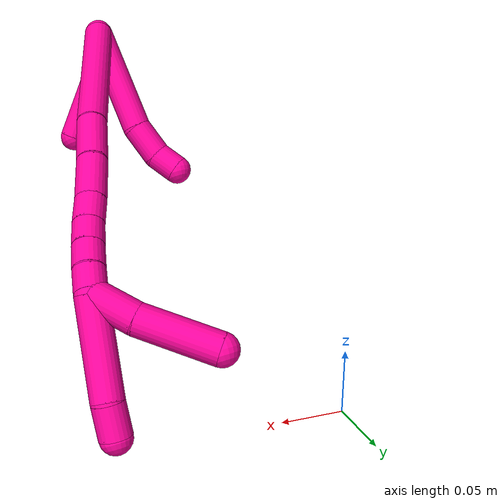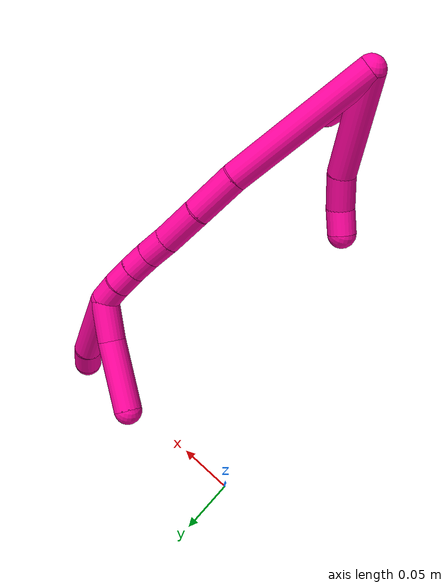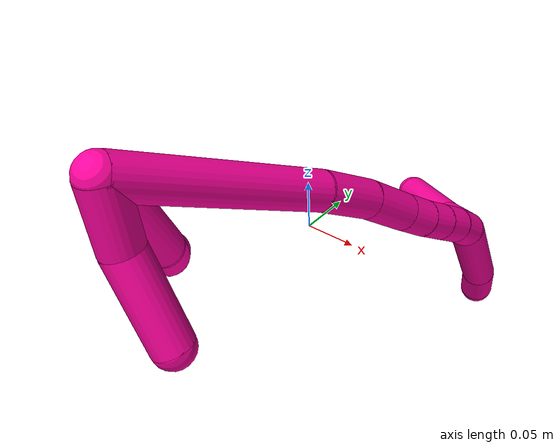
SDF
<sdf version="1.7">
 <world name="default">
  <model name="18">
   <static>0</static>
   <link name="18">
    <collision name="collision-cylinder-e_1_2_8">
     <pose>-0.005236 -0.000471 -0.047545 3.13168 -0.109675 -2.96148</pose>
     <geometry><cylinder><radius>0.0125</radius><length>0.09567</length></cylinder></geometry>
     <surface>
      <friction><ode><mu>1.16</mu><mu2>1.16</mu2><slip1>0</slip1><slip2>0</slip2></ode></friction>
      <contact><ode><kp>1e+06</kp><kd>1</kd><max_vel>0</max_vel><min_depth>0.001</min_depth></ode></contact>
     </surface>
    </collision>
    <visual name="visual-cylinder-e_1_2_8">
     <pose>-0.005236 -0.000471 -0.047545 3.13168 -0.109675 -2.96148</pose>
     <geometry><cylinder><radius>0.0125</radius><length>0.09567</length></cylinder></geometry>
     <material><ambient>1 0.007843 0.615686 1</ambient></material>
    </visual>
    <collision name="collision-cylinder-e_2_8_9">
     <pose>-0.016067 -0.000616 -0.109893 -3.11954 -0.361298 3.02098</pose>
     <geometry><cylinder><radius>0.0125</radius><length>0.031656</length></cylinder></geometry>
     <surface>
      <friction><ode><mu>1.16</mu><mu2>1.16</mu2><slip1>0</slip1><slip2>0</slip2></ode></friction>
      <contact><ode><kp>1e+06</kp><kd>1</kd><max_vel>0</max_vel><min_depth>0.001</min_depth></ode></contact>
     </surface>
    </collision>
    <visual name="visual-cylinder-e_2_8_9">
     <pose>-0.016067 -0.000616 -0.109893 -3.11954 -0.361298 3.02098</pose>
     <geometry><cylinder><radius>0.0125</radius><length>0.031656</length></cylinder></geometry>
     <material><ambient>1 0.007843 0.615686 1</ambient></material>
    </visual>
    <collision name="collision-cylinder-e_3_9_6">
     <pose>-0.027845 0.002496 -0.13378 -2.84407 -0.57692 2.20621</pose>
     <geometry><cylinder><radius>0.0125</radius><length>0.022675</length></cylinder></geometry>
     <surface>
      <friction><ode><mu>1.16</mu><mu2>1.16</mu2><slip1>0</slip1><slip2>0</slip2></ode></friction>
      <contact><ode><kp>1e+06</kp><kd>1</kd><max_vel>0</max_vel><min_depth>0.001</min_depth></ode></contact>
     </surface>
    </collision>
    <visual name="visual-cylinder-e_3_9_6">
     <pose>-0.027845 0.002496 -0.13378 -2.84407 -0.57692 2.20621</pose>
     <geometry><cylinder><radius>0.0125</radius><length>0.022675</length></cylinder></geometry>
     <material><ambient>1 0.007843 0.615686 1</ambient></material>
    </visual>
    <collision name="collision-cylinder-e_1_2_10">
     <pose>0.004608 -0.009755 -0.01762 2.63599 0.224941 0.824357</pose>
     <geometry><cylinder><radius>0.0125</radius><length>0.041321</length></cylinder></geometry>
     <surface>
      <friction><ode><mu>1.16</mu><mu2>1.16</mu2><slip1>0</slip1><slip2>0</slip2></ode></friction>
      <contact><ode><kp>1e+06</kp><kd>1</kd><max_vel>0</max_vel><min_depth>0.001</min_depth></ode></contact>
     </surface>
    </collision>
    <visual name="visual-cylinder-e_1_2_10">
     <pose>0.004608 -0.009755 -0.01762 2.63599 0.224941 0.824357</pose>
     <geometry><cylinder><radius>0.0125</radius><length>0.041321</length></cylinder></geometry>
     <material><ambient>1 0.007843 0.615686 1</ambient></material>
    </visual>
    <collision name="collision-cylinder-e_2_10_5">
     <pose>0.023764 -0.031767 -0.057577 2.63969 0.518785 1.60535</pose>
     <geometry><cylinder><radius>0.0125</radius><length>0.058679</length></cylinder></geometry>
     <surface>
      <friction><ode><mu>1.16</mu><mu2>1.16</mu2><slip1>0</slip1><slip2>0</slip2></ode></friction>
      <contact><ode><kp>1e+06</kp><kd>1</kd><max_vel>0</max_vel><min_depth>0.001</min_depth></ode></contact>
     </surface>
    </collision>
    <visual name="visual-cylinder-e_2_10_5">
     <pose>0.023764 -0.031767 -0.057577 2.63969 0.518785 1.60535</pose>
     <geometry><cylinder><radius>0.0125</radius><length>0.058679</length></cylinder></geometry>
     <material><ambient>1 0.007843 0.615686 1</ambient></material>
    </visual>
    <collision name="collision-cylinder-e_1_2_11">
     <pose>0.023878 0.036221 -0.051908 -2.53235 0.360731 -1.05113</pose>
     <geometry><cylinder><radius>0.0125</radius><length>0.135301</length></cylinder></geometry>
     <surface>
      <friction><ode><mu>1.16</mu><mu2>1.16</mu2><slip1>0</slip1><slip2>0</slip2></ode></friction>
      <contact><ode><kp>1e+06</kp><kd>1</kd><max_vel>0</max_vel><min_depth>0.001</min_depth></ode></contact>
     </surface>
    </collision>
    <visual name="visual-cylinder-e_1_2_11">
     <pose>0.023878 0.036221 -0.051908 -2.53235 0.360731 -1.05113</pose>
     <geometry><cylinder><radius>0.0125</radius><length>0.135301</length></cylinder></geometry>
     <material><ambient>1 0.007843 0.615686 1</ambient></material>
    </visual>
    <collision name="collision-cylinder-e_2_11_12">
     <pose>0.054291 0.082347 -0.121748 -2.63696 0.308817 -1.08632</pose>
     <geometry><cylinder><radius>0.0125</radius><length>0.043006</length></cylinder></geometry>
     <surface>
      <friction><ode><mu>1.16</mu><mu2>1.16</mu2><slip1>0</slip1><slip2>0</slip2></ode></friction>
      <contact><ode><kp>1e+06</kp><kd>1</kd><max_vel>0</max_vel><min_depth>0.001</min_depth></ode></contact>
     </surface>
    </collision>
    <visual name="visual-cylinder-e_2_11_12">
     <pose>0.054291 0.082347 -0.121748 -2.63696 0.308817 -1.08632</pose>
     <geometry><cylinder><radius>0.0125</radius><length>0.043006</length></cylinder></geometry>
     <material><ambient>1 0.007843 0.615686 1</ambient></material>
    </visual>
    <collision name="collision-cylinder-e_3_12_13">
     <pose>0.06716 0.099185 -0.156103 -2.74205 0.341392 -1.41056</pose>
     <geometry><cylinder><radius>0.0125</radius><length>0.037835</length></cylinder></geometry>
     <surface>
      <friction><ode><mu>1.16</mu><mu2>1.16</mu2><slip1>0</slip1><slip2>0</slip2></ode></friction>
      <contact><ode><kp>1e+06</kp><kd>1</kd><max_vel>0</max_vel><min_depth>0.001</min_depth></ode></contact>
     </surface>
    </collision>
    <visual name="visual-cylinder-e_3_12_13">
     <pose>0.06716 0.099185 -0.156103 -2.74205 0.341392 -1.41056</pose>
     <geometry><cylinder><radius>0.0125</radius><length>0.037835</length></cylinder></geometry>
     <material><ambient>1 0.007843 0.615686 1</ambient></material>
    </visual>
    <collision name="collision-cylinder-e_4_13_14">
     <pose>0.077745 0.11048 -0.182056 -2.71255 0.3853 -1.46045</pose>
     <geometry><cylinder><radius>0.0125</radius><length>0.022621</length></cylinder></geometry>
     <surface>
      <friction><ode><mu>1.16</mu><mu2>1.16</mu2><slip1>0</slip1><slip2>0</slip2></ode></friction>
      <contact><ode><kp>1e+06</kp><kd>1</kd><max_vel>0</max_vel><min_depth>0.001</min_depth></ode></contact>
     </surface>
    </collision>
    <visual name="visual-cylinder-e_4_13_14">
     <pose>0.077745 0.11048 -0.182056 -2.71255 0.3853 -1.46045</pose>
     <geometry><cylinder><radius>0.0125</radius><length>0.022621</length></cylinder></geometry>
     <material><ambient>1 0.007843 0.615686 1</ambient></material>
    </visual>
    <collision name="collision-cylinder-e_5_14_15">
     <pose>0.085256 0.119325 -0.200199 -2.66143 0.323939 -1.17714</pose>
     <geometry><cylinder><radius>0.0125</radius><length>0.020486</length></cylinder></geometry>
     <surface>
      <friction><ode><mu>1.16</mu><mu2>1.16</mu2><slip1>0</slip1><slip2>0</slip2></ode></friction>
      <contact><ode><kp>1e+06</kp><kd>1</kd><max_vel>0</max_vel><min_depth>0.001</min_depth></ode></contact>
     </surface>
    </collision>
    <visual name="visual-cylinder-e_5_14_15">
     <pose>0.085256 0.119325 -0.200199 -2.66143 0.323939 -1.17714</pose>
     <geometry><cylinder><radius>0.0125</radius><length>0.020486</length></cylinder></geometry>
     <material><ambient>1 0.007843 0.615686 1</ambient></material>
    </visual>
    <collision name="collision-cylinder-e_6_15_16">
     <pose>0.091388 0.128307 -0.217598 -2.66862 0.283184 -1.06827</pose>
     <geometry><cylinder><radius>0.0125</radius><length>0.020558</length></cylinder></geometry>
     <surface>
      <friction><ode><mu>1.16</mu><mu2>1.16</mu2><slip1>0</slip1><slip2>0</slip2></ode></friction>
      <contact><ode><kp>1e+06</kp><kd>1</kd><max_vel>0</max_vel><min_depth>0.001</min_depth></ode></contact>
     </surface>
    </collision>
    <visual name="visual-cylinder-e_6_15_16">
     <pose>0.091388 0.128307 -0.217598 -2.66862 0.283184 -1.06827</pose>
     <geometry><cylinder><radius>0.0125</radius><length>0.020558</length></cylinder></geometry>
     <material><ambient>1 0.007843 0.615686 1</ambient></material>
    </visual>
    <collision name="collision-cylinder-e_7_16_1">
     <pose>0.096657 0.136408 -0.235505 -2.76514 0.239654 -1.12739</pose>
     <geometry><cylinder><radius>0.0125</radius><length>0.020194</length></cylinder></geometry>
     <surface>
      <friction><ode><mu>1.16</mu><mu2>1.16</mu2><slip1>0</slip1><slip2>0</slip2></ode></friction>
      <contact><ode><kp>1e+06</kp><kd>1</kd><max_vel>0</max_vel><min_depth>0.001</min_depth></ode></contact>
     </surface>
    </collision>
    <visual name="visual-cylinder-e_7_16_1">
     <pose>0.096657 0.136408 -0.235505 -2.76514 0.239654 -1.12739</pose>
     <geometry><cylinder><radius>0.0125</radius><length>0.020194</length></cylinder></geometry>
     <material><ambient>1 0.007843 0.615686 1</ambient></material>
    </visual>
    <collision name="collision-cylinder-e_1_1_17">
     <pose>0.103157 0.139112 -0.281955 3.11744 0.109459 2.70771</pose>
     <geometry><cylinder><radius>0.0125</radius><length>0.075129</length></cylinder></geometry>
     <surface>
      <friction><ode><mu>1.16</mu><mu2>1.16</mu2><slip1>0</slip1><slip2>0</slip2></ode></friction>
      <contact><ode><kp>1e+06</kp><kd>1</kd><max_vel>0</max_vel><min_depth>0.001</min_depth></ode></contact>
     </surface>
    </collision>
    <visual name="visual-cylinder-e_1_1_17">
     <pose>0.103157 0.139112 -0.281955 3.11744 0.109459 2.70771</pose>
     <geometry><cylinder><radius>0.0125</radius><length>0.075129</length></cylinder></geometry>
     <material><ambient>1 0.007843 0.615686 1</ambient></material>
    </visual>
    <collision name="collision-cylinder-e_2_17_4">
     <pose>0.107268 0.13568 -0.331459 2.93666 0.000599 0.005824</pose>
     <geometry><cylinder><radius>0.0125</radius><length>0.024871</length></cylinder></geometry>
     <surface>
      <friction><ode><mu>1.16</mu><mu2>1.16</mu2><slip1>0</slip1><slip2>0</slip2></ode></friction>
      <contact><ode><kp>1e+06</kp><kd>1</kd><max_vel>0</max_vel><min_depth>0.001</min_depth></ode></contact>
     </surface>
    </collision>
    <visual name="visual-cylinder-e_2_17_4">
     <pose>0.107268 0.13568 -0.331459 2.93666 0.000599 0.005824</pose>
     <geometry><cylinder><radius>0.0125</radius><length>0.024871</length></cylinder></geometry>
     <material><ambient>1 0.007843 0.615686 1</ambient></material>
    </visual>
    <collision name="collision-cylinder-e_1_1_18">
     <pose>0.087132 0.145576 -0.257415 -2.73133 -0.70731 2.11518</pose>
     <geometry><cylinder><radius>0.0125</radius><length>0.036694</length></cylinder></geometry>
     <surface>
      <friction><ode><mu>1.16</mu><mu2>1.16</mu2><slip1>0</slip1><slip2>0</slip2></ode></friction>
      <contact><ode><kp>1e+06</kp><kd>1</kd><max_vel>0</max_vel><min_depth>0.001</min_depth></ode></contact>
     </surface>
    </collision>
    <visual name="visual-cylinder-e_1_1_18">
     <pose>0.087132 0.145576 -0.257415 -2.73133 -0.70731 2.11518</pose>
     <geometry><cylinder><radius>0.0125</radius><length>0.036694</length></cylinder></geometry>
     <material><ambient>1 0.007843 0.615686 1</ambient></material>
    </visual>
    <collision name="collision-cylinder-e_2_18_3">
     <pose>0.05177 0.161871 -0.288569 -2.61271 -0.83386 2.04409</pose>
     <geometry><cylinder><radius>0.0125</radius><length>0.063306</length></cylinder></geometry>
     <surface>
      <friction><ode><mu>1.16</mu><mu2>1.16</mu2><slip1>0</slip1><slip2>0</slip2></ode></friction>
      <contact><ode><kp>1e+06</kp><kd>1</kd><max_vel>0</max_vel><min_depth>0.001</min_depth></ode></contact>
     </surface>
    </collision>
    <visual name="visual-cylinder-e_2_18_3">
     <pose>0.05177 0.161871 -0.288569 -2.61271 -0.83386 2.04409</pose>
     <geometry><cylinder><radius>0.0125</radius><length>0.063306</length></cylinder></geometry>
     <material><ambient>1 0.007843 0.615686 1</ambient></material>
    </visual>
    <collision name="collision-sphere-3">
     <pose>0.02833 0.172604 -0.306934 0 -0 0</pose>
     <geometry><sphere><radius>0.0125</radius></sphere></geometry>
     <surface>
      <friction><ode><mu>1.16</mu><mu2>1.16</mu2><slip1>0</slip1><slip2>0</slip2></ode></friction>
      <contact><ode><kp>1e+06</kp><kd>1</kd><max_vel>0</max_vel><min_depth>0.001</min_depth></ode></contact>
     </surface>
    </collision>
    <visual name="visual-sphere-3">
     <pose>0.02833 0.172604 -0.306934 0 -0 0</pose>
     <geometry><sphere><radius>0.0125</radius></sphere></geometry>
     <material><ambient>1 0.007843 0.615686 1</ambient></material>
    </visual>
    <collision name="collision-sphere-5">
     <pose>0.038311 -0.044025 -0.079914 0 -0 0</pose>
     <geometry><sphere><radius>0.0125</radius></sphere></geometry>
     <surface>
      <friction><ode><mu>1.16</mu><mu2>1.16</mu2><slip1>0</slip1><slip2>0</slip2></ode></friction>
      <contact><ode><kp>1e+06</kp><kd>1</kd><max_vel>0</max_vel><min_depth>0.001</min_depth></ode></contact>
     </surface>
    </collision>
    <visual name="visual-sphere-5">
     <pose>0.038311 -0.044025 -0.079914 0 -0 0</pose>
     <geometry><sphere><radius>0.0125</radius></sphere></geometry>
     <material><ambient>1 0.007843 0.615686 1</ambient></material>
    </visual>
    <collision name="collision-sphere-10">
     <pose>0.009217 -0.019509 -0.03524 0 -0 0</pose>
     <geometry><sphere><radius>0.0125</radius></sphere></geometry>
     <surface>
      <friction><ode><mu>1.16</mu><mu2>1.16</mu2><slip1>0</slip1><slip2>0</slip2></ode></friction>
      <contact><ode><kp>1e+06</kp><kd>1</kd><max_vel>0</max_vel><min_depth>0.001</min_depth></ode></contact>
     </surface>
    </collision>
    <visual name="visual-sphere-10">
     <pose>0.009217 -0.019509 -0.03524 0 -0 0</pose>
     <geometry><sphere><radius>0.0125</radius></sphere></geometry>
     <material><ambient>1 0.007843 0.615686 1</ambient></material>
    </visual>
    <collision name="collision-sphere-6">
     <pose>-0.034029 0.005282 -0.142865 0 -0 0</pose>
     <geometry><sphere><radius>0.0125</radius></sphere></geometry>
     <surface>
      <friction><ode><mu>1.16</mu><mu2>1.16</mu2><slip1>0</slip1><slip2>0</slip2></ode></friction>
      <contact><ode><kp>1e+06</kp><kd>1</kd><max_vel>0</max_vel><min_depth>0.001</min_depth></ode></contact>
     </surface>
    </collision>
    <visual name="visual-sphere-6">
     <pose>-0.034029 0.005282 -0.142865 0 -0 0</pose>
     <geometry><sphere><radius>0.0125</radius></sphere></geometry>
     <material><ambient>1 0.007843 0.615686 1</ambient></material>
    </visual>
    <collision name="collision-sphere-9">
     <pose>-0.021662 -0.00029 -0.124695 0 -0 0</pose>
     <geometry><sphere><radius>0.0125</radius></sphere></geometry>
     <surface>
      <friction><ode><mu>1.16</mu><mu2>1.16</mu2><slip1>0</slip1><slip2>0</slip2></ode></friction>
      <contact><ode><kp>1e+06</kp><kd>1</kd><max_vel>0</max_vel><min_depth>0.001</min_depth></ode></contact>
     </surface>
    </collision>
    <visual name="visual-sphere-9">
     <pose>-0.021662 -0.00029 -0.124695 0 -0 0</pose>
     <geometry><sphere><radius>0.0125</radius></sphere></geometry>
     <material><ambient>1 0.007843 0.615686 1</ambient></material>
    </visual>
    <collision name="collision-sphere-2">
     <geometry><sphere><radius>0.0125</radius></sphere></geometry>
     <surface>
      <friction><ode><mu>1.16</mu><mu2>1.16</mu2><slip1>0</slip1><slip2>0</slip2></ode></friction>
      <contact><ode><kp>1e+06</kp><kd>1</kd><max_vel>0</max_vel><min_depth>0.001</min_depth></ode></contact>
     </surface>
    </collision>
    <visual name="visual-sphere-2">
     <geometry><sphere><radius>0.0125</radius></sphere></geometry>
     <material><ambient>1 0.007843 0.615686 1</ambient></material>
    </visual>
    <collision name="collision-sphere-8">
     <pose>-0.010472 -0.000943 -0.09509 0 -0 0</pose>
     <geometry><sphere><radius>0.0125</radius></sphere></geometry>
     <surface>
      <friction><ode><mu>1.16</mu><mu2>1.16</mu2><slip1>0</slip1><slip2>0</slip2></ode></friction>
      <contact><ode><kp>1e+06</kp><kd>1</kd><max_vel>0</max_vel><min_depth>0.001</min_depth></ode></contact>
     </surface>
    </collision>
    <visual name="visual-sphere-8">
     <pose>-0.010472 -0.000943 -0.09509 0 -0 0</pose>
     <geometry><sphere><radius>0.0125</radius></sphere></geometry>
     <material><ambient>1 0.007843 0.615686 1</ambient></material>
    </visual>
    <collision name="collision-sphere-11">
     <pose>0.047756 0.072442 -0.103816 0 -0 0</pose>
     <geometry><sphere><radius>0.0125</radius></sphere></geometry>
     <surface>
      <friction><ode><mu>1.16</mu><mu2>1.16</mu2><slip1>0</slip1><slip2>0</slip2></ode></friction>
      <contact><ode><kp>1e+06</kp><kd>1</kd><max_vel>0</max_vel><min_depth>0.001</min_depth></ode></contact>
     </surface>
    </collision>
    <visual name="visual-sphere-11">
     <pose>0.047756 0.072442 -0.103816 0 -0 0</pose>
     <geometry><sphere><radius>0.0125</radius></sphere></geometry>
     <material><ambient>1 0.007843 0.615686 1</ambient></material>
    </visual>
    <collision name="collision-sphere-12">
     <pose>0.060826 0.092251 -0.139681 0 -0 0</pose>
     <geometry><sphere><radius>0.0125</radius></sphere></geometry>
     <surface>
      <friction><ode><mu>1.16</mu><mu2>1.16</mu2><slip1>0</slip1><slip2>0</slip2></ode></friction>
      <contact><ode><kp>1e+06</kp><kd>1</kd><max_vel>0</max_vel><min_depth>0.001</min_depth></ode></contact>
     </surface>
    </collision>
    <visual name="visual-sphere-12">
     <pose>0.060826 0.092251 -0.139681 0 -0 0</pose>
     <geometry><sphere><radius>0.0125</radius></sphere></geometry>
     <material><ambient>1 0.007843 0.615686 1</ambient></material>
    </visual>
    <collision name="collision-sphere-13">
     <pose>0.073494 0.10612 -0.172525 0 -0 0</pose>
     <geometry><sphere><radius>0.0125</radius></sphere></geometry>
     <surface>
      <friction><ode><mu>1.16</mu><mu2>1.16</mu2><slip1>0</slip1><slip2>0</slip2></ode></friction>
      <contact><ode><kp>1e+06</kp><kd>1</kd><max_vel>0</max_vel><min_depth>0.001</min_depth></ode></contact>
     </surface>
    </collision>
    <visual name="visual-sphere-13">
     <pose>0.073494 0.10612 -0.172525 0 -0 0</pose>
     <geometry><sphere><radius>0.0125</radius></sphere></geometry>
     <material><ambient>1 0.007843 0.615686 1</ambient></material>
    </visual>
    <collision name="collision-sphere-14">
     <pose>0.081995 0.11484 -0.191587 0 -0 0</pose>
     <geometry><sphere><radius>0.0125</radius></sphere></geometry>
     <surface>
      <friction><ode><mu>1.16</mu><mu2>1.16</mu2><slip1>0</slip1><slip2>0</slip2></ode></friction>
      <contact><ode><kp>1e+06</kp><kd>1</kd><max_vel>0</max_vel><min_depth>0.001</min_depth></ode></contact>
     </surface>
    </collision>
    <visual name="visual-sphere-14">
     <pose>0.081995 0.11484 -0.191587 0 -0 0</pose>
     <geometry><sphere><radius>0.0125</radius></sphere></geometry>
     <material><ambient>1 0.007843 0.615686 1</ambient></material>
    </visual>
    <collision name="collision-sphere-15">
     <pose>0.088516 0.123811 -0.208812 0 -0 0</pose>
     <geometry><sphere><radius>0.0125</radius></sphere></geometry>
     <surface>
      <friction><ode><mu>1.16</mu><mu2>1.16</mu2><slip1>0</slip1><slip2>0</slip2></ode></friction>
      <contact><ode><kp>1e+06</kp><kd>1</kd><max_vel>0</max_vel><min_depth>0.001</min_depth></ode></contact>
     </surface>
    </collision>
    <visual name="visual-sphere-15">
     <pose>0.088516 0.123811 -0.208812 0 -0 0</pose>
     <geometry><sphere><radius>0.0125</radius></sphere></geometry>
     <material><ambient>1 0.007843 0.615686 1</ambient></material>
    </visual>
    <collision name="collision-sphere-16">
     <pose>0.09426 0.132803 -0.226383 0 -0 0</pose>
     <geometry><sphere><radius>0.0125</radius></sphere></geometry>
     <surface>
      <friction><ode><mu>1.16</mu><mu2>1.16</mu2><slip1>0</slip1><slip2>0</slip2></ode></friction>
      <contact><ode><kp>1e+06</kp><kd>1</kd><max_vel>0</max_vel><min_depth>0.001</min_depth></ode></contact>
     </surface>
    </collision>
    <visual name="visual-sphere-16">
     <pose>0.09426 0.132803 -0.226383 0 -0 0</pose>
     <geometry><sphere><radius>0.0125</radius></sphere></geometry>
     <material><ambient>1 0.007843 0.615686 1</ambient></material>
    </visual>
    <collision name="collision-sphere-1">
     <pose>0.099054 0.140014 -0.244626 0 -0 0</pose>
     <geometry><sphere><radius>0.0125</radius></sphere></geometry>
     <surface>
      <friction><ode><mu>1.16</mu><mu2>1.16</mu2><slip1>0</slip1><slip2>0</slip2></ode></friction>
      <contact><ode><kp>1e+06</kp><kd>1</kd><max_vel>0</max_vel><min_depth>0.001</min_depth></ode></contact>
     </surface>
    </collision>
    <visual name="visual-sphere-1">
     <pose>0.099054 0.140014 -0.244626 0 -0 0</pose>
     <geometry><sphere><radius>0.0125</radius></sphere></geometry>
     <material><ambient>1 0.007843 0.615686 1</ambient></material>
    </visual>
    <collision name="collision-sphere-18">
     <pose>0.07521 0.151139 -0.270203 0 -0 0</pose>
     <geometry><sphere><radius>0.0125</radius></sphere></geometry>
     <surface>
      <friction><ode><mu>1.16</mu><mu2>1.16</mu2><slip1>0</slip1><slip2>0</slip2></ode></friction>
      <contact><ode><kp>1e+06</kp><kd>1</kd><max_vel>0</max_vel><min_depth>0.001</min_depth></ode></contact>
     </surface>
    </collision>
    <visual name="visual-sphere-18">
     <pose>0.07521 0.151139 -0.270203 0 -0 0</pose>
     <geometry><sphere><radius>0.0125</radius></sphere></geometry>
     <material><ambient>1 0.007843 0.615686 1</ambient></material>
    </visual>
    <collision name="collision-sphere-17">
     <pose>0.107261 0.138211 -0.319284 0 -0 0</pose>
     <geometry><sphere><radius>0.0125</radius></sphere></geometry>
     <surface>
      <friction><ode><mu>1.16</mu><mu2>1.16</mu2><slip1>0</slip1><slip2>0</slip2></ode></friction>
      <contact><ode><kp>1e+06</kp><kd>1</kd><max_vel>0</max_vel><min_depth>0.001</min_depth></ode></contact>
     </surface>
    </collision>
    <visual name="visual-sphere-17">
     <pose>0.107261 0.138211 -0.319284 0 -0 0</pose>
     <geometry><sphere><radius>0.0125</radius></sphere></geometry>
     <material><ambient>1 0.007843 0.615686 1</ambient></material>
    </visual>
    <collision name="collision-sphere-4">
     <pose>0.107276 0.133149 -0.343634 0 -0 0</pose>
     <geometry><sphere><radius>0.0125</radius></sphere></geometry>
     <surface>
      <friction><ode><mu>1.16</mu><mu2>1.16</mu2><slip1>0</slip1><slip2>0</slip2></ode></friction>
      <contact><ode><kp>1e+06</kp><kd>1</kd><max_vel>0</max_vel><min_depth>0.001</min_depth></ode></contact>
     </surface>
    </collision>
    <visual name="visual-sphere-4">
     <pose>0.107276 0.133149 -0.343634 0 -0 0</pose>
     <geometry><sphere><radius>0.0125</radius></sphere></geometry>
     <material><ambient>1 0.007843 0.615686 1</ambient></material>
    </visual>
    <inertial>
     <pose>0.043038 0.066228 -0.143896 0 -0 0</pose>
     <mass>0.75</mass>
     <inertia>
      <ixx>-0.000155</ixx>
      <ixy>0</ixy>
      <ixz>0</ixz>
      <iyy>-5.4e-05</iyy>
      <iyz>0</iyz>
      <izz>-0.000232</izz>
     </inertia>
    </inertial>
   </link>
   <pose>0.111883 -0.289159 0.256478 0.524771 0.11546 0.053255</pose>
  </model>
 </world>
</sdf>
